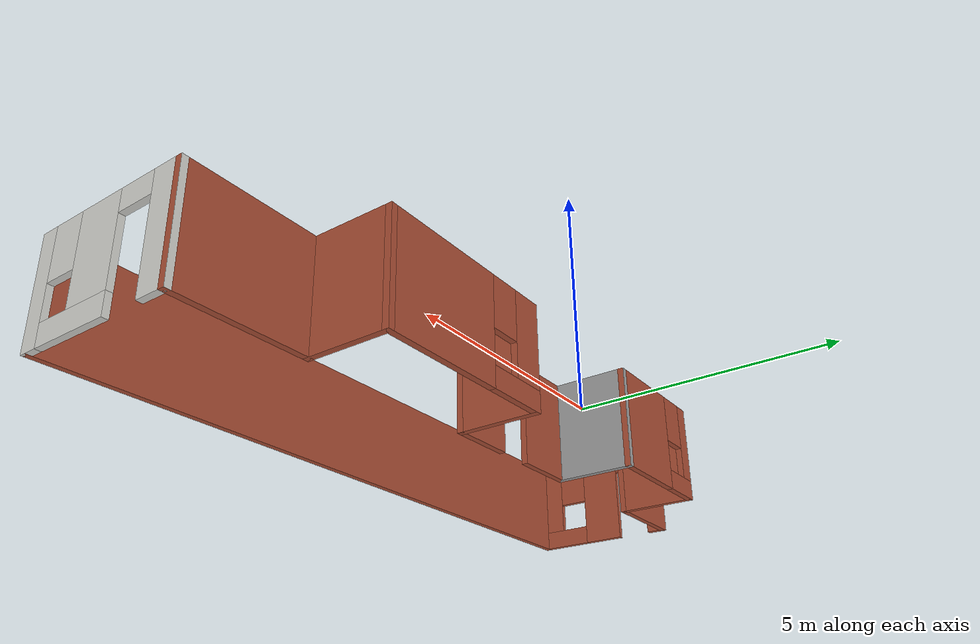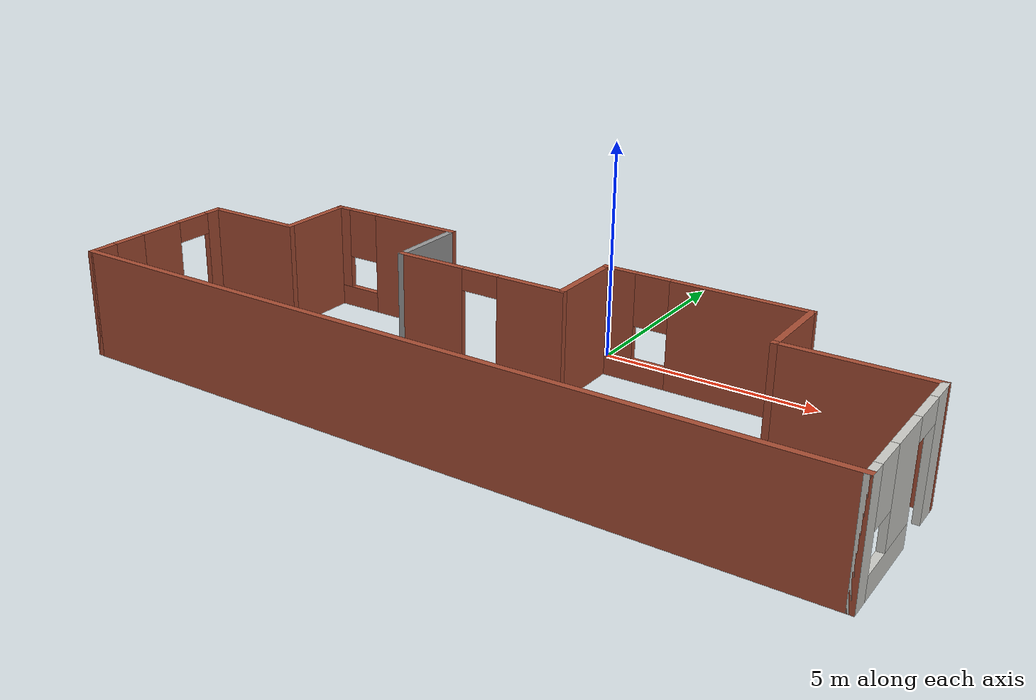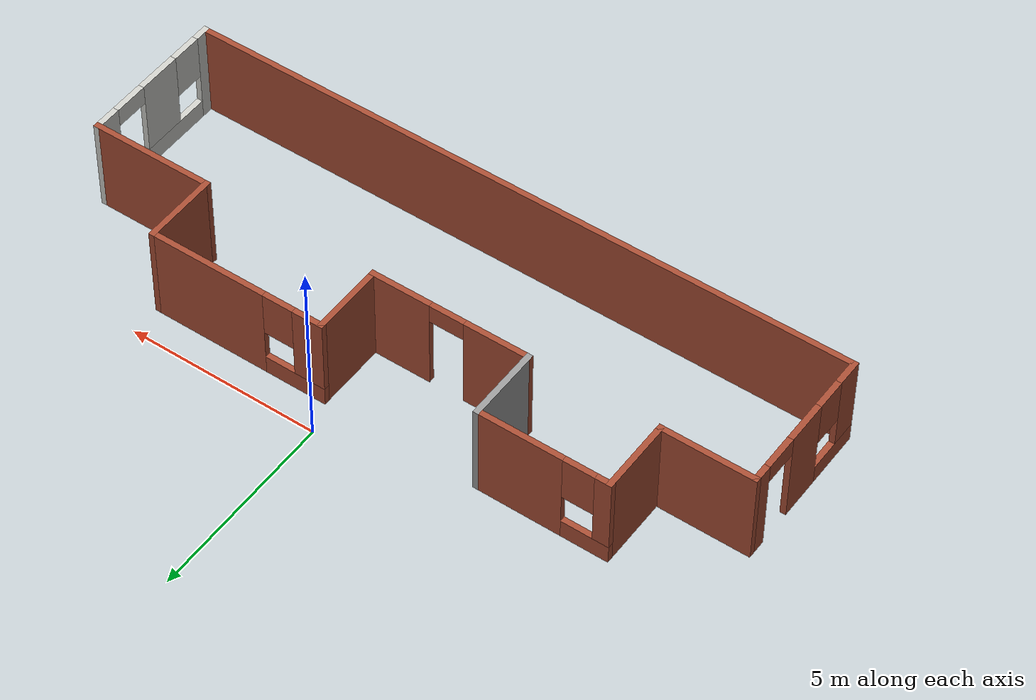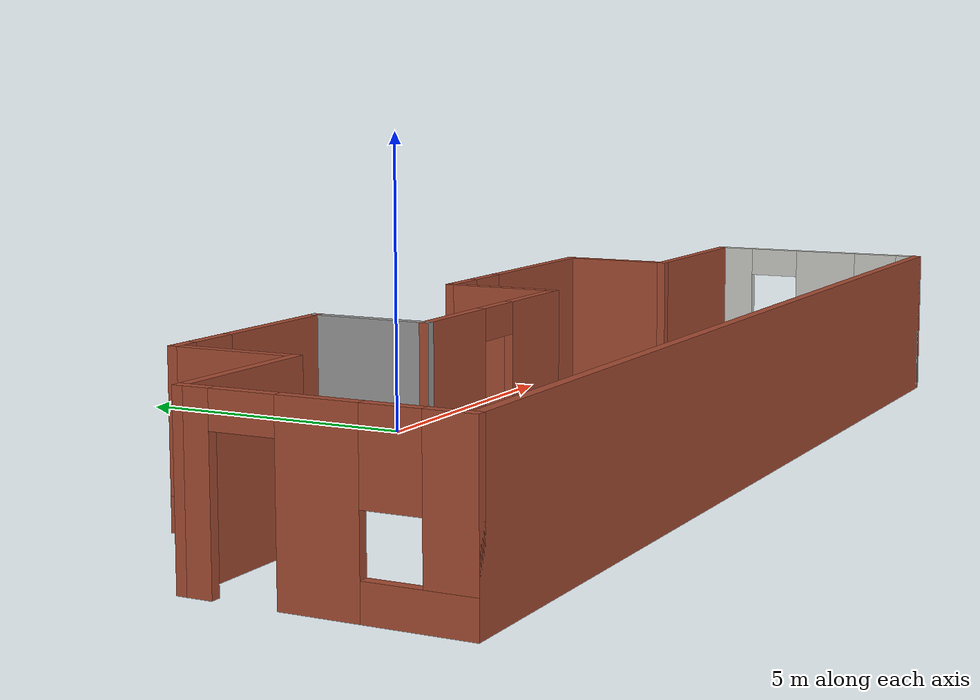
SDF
<?xml version='1.0'?>
<sdf version='1.6'>
  <model name='model'>
    <pose frame=''>-0.71 -3.71 0 0 -0 0</pose>
    <link name='Wall_1'>
      <pose frame=''>8.75 -0.925 0 0 -0 1.5708</pose>
      <visual name='Wall_1_Visual_0'>
        <pose frame=''>-1.7775 0 1.25 0 -0 0</pose>
        <geometry>
          <box>
            <size>0.445 0.15 2.5</size>
          </box>
        </geometry>
        <material>
          <script>
            <uri>file://media/materials/scripts/gazebo.material</uri>
            <name>Gazebo/CeilingTiled</name>
          </script>
          <ambient>0.435294 0.796078 0.67451 1</ambient>
        </material>
        <meta>
          <layer>0</layer>
        </meta>
      </visual>
      <collision name='Wall_1_Collision_0'>
        <geometry>
          <box>
            <size>0.445 0.15 2.5</size>
          </box>
        </geometry>
        <pose frame=''>-1.7775 0 1.25 0 -0 0</pose>
      </collision>
      <visual name='Wall_1_Visual_1'>
        <pose frame=''>1.6475 0 1.25 0 -0 0</pose>
        <geometry>
          <box>
            <size>0.705 0.15 2.5</size>
          </box>
        </geometry>
        <material>
          <script>
            <uri>file://media/materials/scripts/gazebo.material</uri>
            <name>Gazebo/CeilingTiled</name>
          </script>
          <ambient>0.435294 0.796078 0.67451 1</ambient>
        </material>
        <meta>
          <layer>0</layer>
        </meta>
      </visual>
      <collision name='Wall_1_Collision_1'>
        <geometry>
          <box>
            <size>0.705 0.15 2.5</size>
          </box>
        </geometry>
        <pose frame=''>1.6475 0 1.25 0 -0 0</pose>
      </collision>
      <visual name='Wall_1_Visual_2'>
        <pose frame=''>-0.58 0 0.25 0 -0 0</pose>
        <geometry>
          <box>
            <size>1.95 0.15 0.5</size>
          </box>
        </geometry>
        <material>
          <script>
            <uri>file://media/materials/scripts/gazebo.material</uri>
            <name>Gazebo/CeilingTiled</name>
          </script>
          <ambient>0.435294 0.796078 0.67451 1</ambient>
        </material>
        <meta>
          <layer>0</layer>
        </meta>
      </visual>
      <collision name='Wall_1_Collision_2'>
        <geometry>
          <box>
            <size>1.95 0.15 0.5</size>
          </box>
        </geometry>
        <pose frame=''>-0.58 0 0.25 0 -0 0</pose>
      </collision>
      <visual name='Wall_1_Visual_3'>
        <pose frame=''>-0.18 0 1.5 0 -0 0</pose>
        <geometry>
          <box>
            <size>1.15 0.15 2</size>
          </box>
        </geometry>
        <material>
          <script>
            <uri>file://media/materials/scripts/gazebo.material</uri>
            <name>Gazebo/CeilingTiled</name>
          </script>
          <ambient>0.435294 0.796078 0.67451 1</ambient>
        </material>
        <meta>
          <layer>0</layer>
        </meta>
      </visual>
      <collision name='Wall_1_Collision_3'>
        <geometry>
          <box>
            <size>1.15 0.15 2</size>
          </box>
        </geometry>
        <pose frame=''>-0.18 0 1.5 0 -0 0</pose>
      </collision>
      <visual name='Wall_1_Visual_4'>
        <pose frame=''>-1.155 0 1.9 0 -0 0</pose>
        <geometry>
          <box>
            <size>0.8 0.15 1.2</size>
          </box>
        </geometry>
        <material>
          <script>
            <uri>file://media/materials/scripts/gazebo.material</uri>
            <name>Gazebo/CeilingTiled</name>
          </script>
          <ambient>0.435294 0.796078 0.67451 1</ambient>
        </material>
        <meta>
          <layer>0</layer>
        </meta>
      </visual>
      <collision name='Wall_1_Collision_4'>
        <geometry>
          <box>
            <size>0.8 0.15 1.2</size>
          </box>
        </geometry>
        <pose frame=''>-1.155 0 1.9 0 -0 0</pose>
      </collision>
      <visual name='Wall_1_Visual_5'>
        <pose frame=''>0.845 0 2.25 0 -0 0</pose>
        <geometry>
          <box>
            <size>0.9 0.15 0.5</size>
          </box>
        </geometry>
        <material>
          <script>
            <uri>file://media/materials/scripts/gazebo.material</uri>
            <name>Gazebo/CeilingTiled</name>
          </script>
          <ambient>0.435294 0.796078 0.67451 1</ambient>
        </material>
        <meta>
          <layer>0</layer>
        </meta>
      </visual>
      <collision name='Wall_1_Collision_5'>
        <geometry>
          <box>
            <size>0.9 0.15 0.5</size>
          </box>
        </geometry>
        <pose frame=''>0.845 0 2.25 0 -0 0</pose>
      </collision>
    </link>
    <link name='Wall_10'>
      <collision name='Wall_10_Collision'>
        <geometry>
          <box>
            <size>2.5 0.15 2.5</size>
          </box>
        </geometry>
        <pose frame=''>0 0 1.25 0 -0 0</pose>
      </collision>
      <visual name='Wall_10_Visual'>
        <pose frame=''>0 0 1.25 0 -0 0</pose>
        <geometry>
          <box>
            <size>2.5 0.15 2.5</size>
          </box>
        </geometry>
        <material>
          <script>
            <uri>file://media/materials/scripts/gazebo.material</uri>
            <name>Gazebo/Bricks</name>
          </script>
          <ambient>1 0.764706 0.305882 1</ambient>
        </material>
        <meta>
          <layer>0</layer>
        </meta>
      </visual>
      <pose frame=''>-7.575 1 0 0 -0 3.14159</pose>
    </link>
    <link name='Wall_11'>
      <pose frame=''>-8.75 -0.925 0 0 0 -1.5708</pose>
      <visual name='Wall_11_Visual_0'>
        <pose frame=''>-1.7475 0 1.25 0 -0 0</pose>
        <geometry>
          <box>
            <size>0.505 0.15 2.5</size>
          </box>
        </geometry>
        <material>
          <script>
            <uri>file://media/materials/scripts/gazebo.material</uri>
            <name>Gazebo/Bricks</name>
          </script>
          <ambient>1 1 1 1</ambient>
        </material>
        <meta>
          <layer>0</layer>
        </meta>
      </visual>
      <collision name='Wall_11_Collision_0'>
        <geometry>
          <box>
            <size>0.505 0.15 2.5</size>
          </box>
        </geometry>
        <pose frame=''>-1.7475 0 1.25 0 -0 0</pose>
      </collision>
      <visual name='Wall_11_Visual_1'>
        <pose frame=''>-0.045 0 1.25 0 -0 0</pose>
        <geometry>
          <box>
            <size>1.1 0.15 2.5</size>
          </box>
        </geometry>
        <material>
          <script>
            <uri>file://media/materials/scripts/gazebo.material</uri>
            <name>Gazebo/Bricks</name>
          </script>
          <ambient>1 1 1 1</ambient>
        </material>
        <meta>
          <layer>0</layer>
        </meta>
      </visual>
      <collision name='Wall_11_Collision_1'>
        <geometry>
          <box>
            <size>1.1 0.15 2.5</size>
          </box>
        </geometry>
        <pose frame=''>-0.045 0 1.25 0 -0 0</pose>
      </collision>
      <visual name='Wall_11_Visual_2'>
        <pose frame=''>1.2525 0 0.25 0 -0 0</pose>
        <geometry>
          <box>
            <size>1.495 0.15 0.5</size>
          </box>
        </geometry>
        <material>
          <script>
            <uri>file://media/materials/scripts/gazebo.material</uri>
            <name>Gazebo/Bricks</name>
          </script>
          <ambient>1 1 1 1</ambient>
        </material>
        <meta>
          <layer>0</layer>
        </meta>
      </visual>
      <collision name='Wall_11_Collision_2'>
        <geometry>
          <box>
            <size>1.495 0.15 0.5</size>
          </box>
        </geometry>
        <pose frame=''>1.2525 0 0.25 0 -0 0</pose>
      </collision>
      <visual name='Wall_11_Visual_3'>
        <pose frame=''>1.6525 0 1.5 0 -0 0</pose>
        <geometry>
          <box>
            <size>0.695 0.15 2</size>
          </box>
        </geometry>
        <material>
          <script>
            <uri>file://media/materials/scripts/gazebo.material</uri>
            <name>Gazebo/Bricks</name>
          </script>
          <ambient>1 1 1 1</ambient>
        </material>
        <meta>
          <layer>0</layer>
        </meta>
      </visual>
      <collision name='Wall_11_Collision_3'>
        <geometry>
          <box>
            <size>0.695 0.15 2</size>
          </box>
        </geometry>
        <pose frame=''>1.6525 0 1.5 0 -0 0</pose>
      </collision>
      <visual name='Wall_11_Visual_4'>
        <pose frame=''>0.905 0 1.9 0 -0 0</pose>
        <geometry>
          <box>
            <size>0.8 0.15 1.2</size>
          </box>
        </geometry>
        <material>
          <script>
            <uri>file://media/materials/scripts/gazebo.material</uri>
            <name>Gazebo/Bricks</name>
          </script>
          <ambient>1 1 1 1</ambient>
        </material>
        <meta>
          <layer>0</layer>
        </meta>
      </visual>
      <collision name='Wall_11_Collision_4'>
        <geometry>
          <box>
            <size>0.8 0.15 1.2</size>
          </box>
        </geometry>
        <pose frame=''>0.905 0 1.9 0 -0 0</pose>
      </collision>
      <visual name='Wall_11_Visual_5'>
        <pose frame=''>-1.045 0 2.25 0 -0 0</pose>
        <geometry>
          <box>
            <size>0.9 0.15 0.5</size>
          </box>
        </geometry>
        <material>
          <script>
            <uri>file://media/materials/scripts/gazebo.material</uri>
            <name>Gazebo/Bricks</name>
          </script>
          <ambient>1 1 1 1</ambient>
        </material>
        <meta>
          <layer>0</layer>
        </meta>
      </visual>
      <collision name='Wall_11_Collision_5'>
        <geometry>
          <box>
            <size>0.9 0.15 0.5</size>
          </box>
        </geometry>
        <pose frame=''>-1.045 0 2.25 0 -0 0</pose>
      </collision>
    </link>
    <link name='Wall_12'>
      <collision name='Wall_12_Collision'>
        <geometry>
          <box>
            <size>17.65 0.15 2.5</size>
          </box>
        </geometry>
        <pose frame=''>0 0 1.25 0 -0 0</pose>
      </collision>
      <visual name='Wall_12_Visual'>
        <pose frame=''>0 0 1.25 0 -0 0</pose>
        <geometry>
          <box>
            <size>17.65 0.15 2.5</size>
          </box>
        </geometry>
        <material>
          <script>
            <uri>file://media/materials/scripts/gazebo.material</uri>
            <name>Gazebo/Bricks</name>
          </script>
          <ambient>0.435294 0.796078 0.67451 1</ambient>
        </material>
        <meta>
          <layer>0</layer>
        </meta>
      </visual>
      <pose frame=''>0 -2.85 0 0 -0 0</pose>
    </link>
    <link name='Wall_2'>
      <collision name='Wall_2_Collision'>
        <geometry>
          <box>
            <size>3.25 0.15 2.5</size>
          </box>
        </geometry>
        <pose frame=''>0 0 1.25 0 -0 0</pose>
      </collision>
      <visual name='Wall_2_Visual'>
        <pose frame=''>0 0 1.25 0 -0 0</pose>
        <geometry>
          <box>
            <size>3.25 0.15 2.5</size>
          </box>
        </geometry>
        <material>
          <script>
            <uri>file://media/materials/scripts/gazebo.material</uri>
            <name>Gazebo/Bricks</name>
          </script>
          <ambient>1 1 1 1</ambient>
        </material>
        <meta>
          <layer>0</layer>
        </meta>
      </visual>
      <pose frame=''>7.2 1 0 0 -0 3.14159</pose>
    </link>
    <link name='Wall_3'>
      <collision name='Wall_3_Collision'>
        <geometry>
          <box>
            <size>2 0.15 2.5</size>
          </box>
        </geometry>
        <pose frame=''>0 0 1.25 0 -0 0</pose>
      </collision>
      <visual name='Wall_3_Visual'>
        <pose frame=''>0 0 1.25 0 -0 0</pose>
        <geometry>
          <box>
            <size>2 0.15 2.5</size>
          </box>
        </geometry>
        <material>
          <script>
            <uri>file://media/materials/scripts/gazebo.material</uri>
            <name>Gazebo/Bricks</name>
          </script>
          <ambient>1 1 1 1</ambient>
        </material>
        <meta>
          <layer>0</layer>
        </meta>
      </visual>
      <pose frame=''>5.65 1.925 0 0 -0 1.5708</pose>
    </link>
    <link name='Wall_4'>
      <pose frame=''>3.35 2.85 0 0 -0 3.14159</pose>
      <visual name='Wall_4_Visual_0'>
        <pose frame=''>-0.8075 0 1.25 0 -0 0</pose>
        <geometry>
          <box>
            <size>3.135 0.15 2.5</size>
          </box>
        </geometry>
        <material>
          <script>
            <uri>file://media/materials/scripts/gazebo.material</uri>
            <name>Gazebo/Bricks</name>
          </script>
          <ambient>1 1 1 1</ambient>
        </material>
        <meta>
          <layer>0</layer>
        </meta>
      </visual>
      <collision name='Wall_4_Collision_0'>
        <geometry>
          <box>
            <size>3.135 0.15 2.5</size>
          </box>
        </geometry>
        <pose frame=''>-0.8075 0 1.25 0 -0 0</pose>
      </collision>
      <visual name='Wall_4_Visual_1'>
        <pose frame=''>1.5675 0 0.25 0 -0 0</pose>
        <geometry>
          <box>
            <size>1.615 0.15 0.5</size>
          </box>
        </geometry>
        <material>
          <script>
            <uri>file://media/materials/scripts/gazebo.material</uri>
            <name>Gazebo/Bricks</name>
          </script>
          <ambient>1 1 1 1</ambient>
        </material>
        <meta>
          <layer>0</layer>
        </meta>
      </visual>
      <collision name='Wall_4_Collision_1'>
        <geometry>
          <box>
            <size>1.615 0.15 0.5</size>
          </box>
        </geometry>
        <pose frame=''>1.5675 0 0.25 0 -0 0</pose>
      </collision>
      <visual name='Wall_4_Visual_2'>
        <pose frame=''>1.9675 0 1.5 0 -0 0</pose>
        <geometry>
          <box>
            <size>0.815 0.15 2</size>
          </box>
        </geometry>
        <material>
          <script>
            <uri>file://media/materials/scripts/gazebo.material</uri>
            <name>Gazebo/Bricks</name>
          </script>
          <ambient>1 1 1 1</ambient>
        </material>
        <meta>
          <layer>0</layer>
        </meta>
      </visual>
      <collision name='Wall_4_Collision_2'>
        <geometry>
          <box>
            <size>0.815 0.15 2</size>
          </box>
        </geometry>
        <pose frame=''>1.9675 0 1.5 0 -0 0</pose>
      </collision>
      <visual name='Wall_4_Visual_3'>
        <pose frame=''>1.16 0 1.9 0 -0 0</pose>
        <geometry>
          <box>
            <size>0.8 0.15 1.2</size>
          </box>
        </geometry>
        <material>
          <script>
            <uri>file://media/materials/scripts/gazebo.material</uri>
            <name>Gazebo/Bricks</name>
          </script>
          <ambient>1 1 1 1</ambient>
        </material>
        <meta>
          <layer>0</layer>
        </meta>
      </visual>
      <collision name='Wall_4_Collision_3'>
        <geometry>
          <box>
            <size>0.8 0.15 1.2</size>
          </box>
        </geometry>
        <pose frame=''>1.16 0 1.9 0 -0 0</pose>
      </collision>
    </link>
    <link name='Wall_5'>
      <collision name='Wall_5_Collision'>
        <geometry>
          <box>
            <size>2 0.15 2.5</size>
          </box>
        </geometry>
        <pose frame=''>0 0 1.25 0 -0 0</pose>
      </collision>
      <visual name='Wall_5_Visual'>
        <pose frame=''>0 0 1.25 0 -0 0</pose>
        <geometry>
          <box>
            <size>2 0.15 2.5</size>
          </box>
        </geometry>
        <material>
          <script>
            <uri>file://media/materials/scripts/gazebo.material</uri>
            <name>Gazebo/Bricks</name>
          </script>
          <ambient>1 1 1 1</ambient>
        </material>
        <meta>
          <layer>0</layer>
        </meta>
      </visual>
      <pose frame=''>1.05 1.925 0 0 0 -1.5708</pose>
    </link>
    <link name='Wall_6'>
      <pose frame=''>-1 1 0 0 -0 3.14159</pose>
      <visual name='Wall_6_Visual_0'>
        <pose frame=''>-1.3125 0 1.25 0 -0 0</pose>
        <geometry>
          <box>
            <size>1.625 0.15 2.5</size>
          </box>
        </geometry>
        <material>
          <script>
            <uri>file://media/materials/scripts/gazebo.material</uri>
            <name>Gazebo/Bricks</name>
          </script>
          <ambient>1 1 1 1</ambient>
        </material>
        <meta>
          <layer>0</layer>
        </meta>
      </visual>
      <collision name='Wall_6_Collision_0'>
        <geometry>
          <box>
            <size>1.625 0.15 2.5</size>
          </box>
        </geometry>
        <pose frame=''>-1.3125 0 1.25 0 -0 0</pose>
      </collision>
      <visual name='Wall_6_Visual_1'>
        <pose frame=''>1.2625 0 1.25 0 -0 0</pose>
        <geometry>
          <box>
            <size>1.725 0.15 2.5</size>
          </box>
        </geometry>
        <material>
          <script>
            <uri>file://media/materials/scripts/gazebo.material</uri>
            <name>Gazebo/Bricks</name>
          </script>
          <ambient>1 1 1 1</ambient>
        </material>
        <meta>
          <layer>0</layer>
        </meta>
      </visual>
      <collision name='Wall_6_Collision_1'>
        <geometry>
          <box>
            <size>1.725 0.15 2.5</size>
          </box>
        </geometry>
        <pose frame=''>1.2625 0 1.25 0 -0 0</pose>
      </collision>
      <visual name='Wall_6_Visual_2'>
        <pose frame=''>-0.05 0 2.25 0 -0 0</pose>
        <geometry>
          <box>
            <size>0.9 0.15 0.5</size>
          </box>
        </geometry>
        <material>
          <script>
            <uri>file://media/materials/scripts/gazebo.material</uri>
            <name>Gazebo/Bricks</name>
          </script>
          <ambient>1 1 1 1</ambient>
        </material>
        <meta>
          <layer>0</layer>
        </meta>
      </visual>
      <collision name='Wall_6_Collision_2'>
        <geometry>
          <box>
            <size>0.9 0.15 0.5</size>
          </box>
        </geometry>
        <pose frame=''>-0.05 0 2.25 0 -0 0</pose>
      </collision>
    </link>
    <link name='Wall_7'>
      <collision name='Wall_7_Collision'>
        <geometry>
          <box>
            <size>2 0.15 2.5</size>
          </box>
        </geometry>
        <pose frame=''>0 0 1.25 0 -0 0</pose>
      </collision>
      <visual name='Wall_7_Visual'>
        <pose frame=''>0 0 1.25 0 -0 0</pose>
        <geometry>
          <box>
            <size>2 0.15 2.5</size>
          </box>
        </geometry>
        <material>
          <script>
            <uri>file://media/materials/scripts/gazebo.material</uri>
            <name>Gazebo/Grey</name>
          </script>
          <ambient>1 1 1 1</ambient>
        </material>
        <meta>
          <layer>0</layer>
        </meta>
      </visual>
      <pose frame=''>-3.05 1.925 0 0 -0 1.5708</pose>
    </link>
    <link name='Wall_8'>
      <pose frame=''>-4.725 2.85 0 0 -0 3.14159</pose>
      <visual name='Wall_8_Visual_0'>
        <pose frame=''>-0.6125 0 1.25 0 -0 0</pose>
        <geometry>
          <box>
            <size>2.275 0.15 2.5</size>
          </box>
        </geometry>
        <material>
          <script>
            <uri>file://media/materials/scripts/gazebo.material</uri>
            <name>Gazebo/Bricks</name>
          </script>
          <ambient>1 1 1 1</ambient>
        </material>
        <meta>
          <layer>0</layer>
        </meta>
      </visual>
      <collision name='Wall_8_Collision_0'>
        <geometry>
          <box>
            <size>2.275 0.15 2.5</size>
          </box>
        </geometry>
        <pose frame=''>-0.6125 0 1.25 0 -0 0</pose>
      </collision>
      <visual name='Wall_8_Visual_1'>
        <pose frame=''>1.1375 0 0.25 0 -0 0</pose>
        <geometry>
          <box>
            <size>1.225 0.15 0.5</size>
          </box>
        </geometry>
        <material>
          <script>
            <uri>file://media/materials/scripts/gazebo.material</uri>
            <name>Gazebo/Bricks</name>
          </script>
          <ambient>1 1 1 1</ambient>
        </material>
        <meta>
          <layer>0</layer>
        </meta>
      </visual>
      <collision name='Wall_8_Collision_1'>
        <geometry>
          <box>
            <size>1.225 0.15 0.5</size>
          </box>
        </geometry>
        <pose frame=''>1.1375 0 0.25 0 -0 0</pose>
      </collision>
      <visual name='Wall_8_Visual_2'>
        <pose frame=''>1.5375 0 1.5 0 -0 0</pose>
        <geometry>
          <box>
            <size>0.425 0.15 2</size>
          </box>
        </geometry>
        <material>
          <script>
            <uri>file://media/materials/scripts/gazebo.material</uri>
            <name>Gazebo/Bricks</name>
          </script>
          <ambient>1 1 1 1</ambient>
        </material>
        <meta>
          <layer>0</layer>
        </meta>
      </visual>
      <collision name='Wall_8_Collision_2'>
        <geometry>
          <box>
            <size>0.425 0.15 2</size>
          </box>
        </geometry>
        <pose frame=''>1.5375 0 1.5 0 -0 0</pose>
      </collision>
      <visual name='Wall_8_Visual_3'>
        <pose frame=''>0.925 0 1.9 0 -0 0</pose>
        <geometry>
          <box>
            <size>0.8 0.15 1.2</size>
          </box>
        </geometry>
        <material>
          <script>
            <uri>file://media/materials/scripts/gazebo.material</uri>
            <name>Gazebo/Bricks</name>
          </script>
          <ambient>1 1 1 1</ambient>
        </material>
        <meta>
          <layer>0</layer>
        </meta>
      </visual>
      <collision name='Wall_8_Collision_3'>
        <geometry>
          <box>
            <size>0.8 0.15 1.2</size>
          </box>
        </geometry>
        <pose frame=''>0.925 0 1.9 0 -0 0</pose>
      </collision>
    </link>
    <link name='Wall_9'>
      <collision name='Wall_9_Collision'>
        <geometry>
          <box>
            <size>2 0.15 2.5</size>
          </box>
        </geometry>
        <pose frame=''>0 0 1.25 0 -0 0</pose>
      </collision>
      <visual name='Wall_9_Visual'>
        <pose frame=''>0 0 1.25 0 -0 0</pose>
        <geometry>
          <box>
            <size>2 0.15 2.5</size>
          </box>
        </geometry>
        <material>
          <script>
            <uri>file://media/materials/scripts/gazebo.material</uri>
            <name>Gazebo/Bricks</name>
          </script>
          <ambient>1 1 1 1</ambient>
        </material>
        <meta>
          <layer>0</layer>
        </meta>
      </visual>
      <pose frame=''>-6.4 1.925 0 0 0 -1.5708</pose>
    </link>
    <static>1</static>
  </model>
</sdf>
